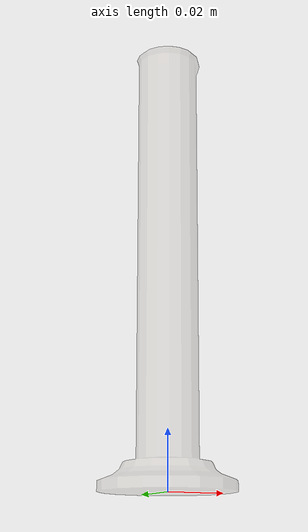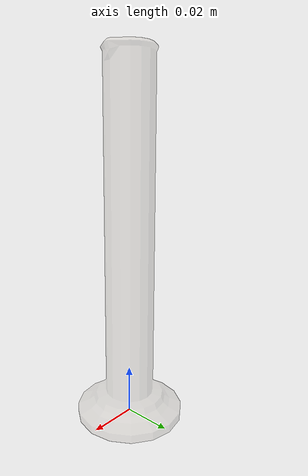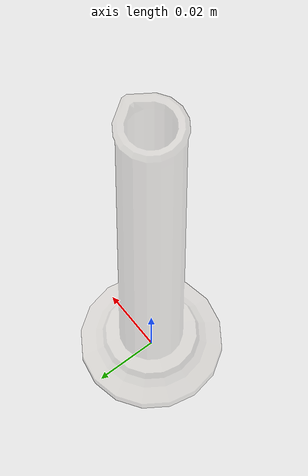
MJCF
<?xml version="1.0" ?>
<!-- @bbox dx=0.046 dy=0.046 dz=0.150 -->
<mujoco model="cylinder_small">
  <asset>
    <texture type="2d" name="lab_cylinder_a" file="lab_cylinder_a.png"/>
    <material name="lab_cylinder_a" texture="lab_cylinder_a" specular="0.4000000000000001" shininess="0.001" rgba="1 1 1 0.3"/>
    <mesh file="cylinder_small.obj" scale="0.013265766386786884 0.013265766386786884 0.013265766386786884"/>
    <mesh file="cylinder_small/cylinder_small_collision_0.obj" scale="0.013265766386786884 0.013265766386786884 0.013265766386786884"/>
    <mesh file="cylinder_small/cylinder_small_collision_1.obj" scale="0.013265766386786884 0.013265766386786884 0.013265766386786884"/>
    <mesh file="cylinder_small/cylinder_small_collision_2.obj" scale="0.013265766386786884 0.013265766386786884 0.013265766386786884"/>
    <mesh file="cylinder_small/cylinder_small_collision_3.obj" scale="0.013265766386786884 0.013265766386786884 0.013265766386786884"/>
    <mesh file="cylinder_small/cylinder_small_collision_4.obj" scale="0.013265766386786884 0.013265766386786884 0.013265766386786884"/>
    <mesh file="cylinder_small/cylinder_small_collision_5.obj" scale="0.013265766386786884 0.013265766386786884 0.013265766386786884"/>
    <mesh file="cylinder_small/cylinder_small_collision_6.obj" scale="0.013265766386786884 0.013265766386786884 0.013265766386786884"/>
    <mesh file="cylinder_small/cylinder_small_collision_7.obj" scale="0.013265766386786884 0.013265766386786884 0.013265766386786884"/>
    <mesh file="cylinder_small/cylinder_small_collision_8.obj" scale="0.013265766386786884 0.013265766386786884 0.013265766386786884"/>
      <material name="CaSO4" rgba="1 1 1 0.7"/>
    <material name="CuCl2" rgba="0.141 1.0 0.174 0.4"/>
    <material name="CuSO4" rgba="0 0.45 1 0.4"/>
    <material name="FeCl3" rgba="0.6475 0.5686 0.023 0.4"/>
    <material name="KMnO4" rgba="0.5 0 0.5 0.4"/>
    <material name="I2" rgba="0.3 0.13 0.0 0.4"/>
    <material name="K2CrO4" rgba="0.57 0.12 0.013 0.4"/>
    <material name="NaCl" rgba="1 1 1 0.3"/>
</asset>
  <worldbody>
    <body name="cylinder_small">
      <inertial pos="0 0 0.075000" mass="0.02" diaginertia="0.0008 0.0008 0.0005"/>
      <geom material="lab_cylinder_a" mesh="cylinder_small" class="visual"/>
      <geom mesh="cylinder_small_collision_0"  class="collision"/>
      <geom mesh="cylinder_small_collision_1"  class="collision"/>
      <geom mesh="cylinder_small_collision_2"  class="collision"/>
      <geom mesh="cylinder_small_collision_3"  class="collision"/>
      <geom mesh="cylinder_small_collision_4"  class="collision"/>
      <geom mesh="cylinder_small_collision_5"  class="collision"/>
      <geom mesh="cylinder_small_collision_6"  class="collision"/>
      <geom mesh="cylinder_small_collision_7"  class="collision"/>
      <geom mesh="cylinder_small_collision_8"  class="collision"/>
      <site class="grasppoint" pos="0.0000 0.0000 0.1200" group="4"/>
          <geom name="solution" type="cylinder" size="0.009038 0.035001" pos="0 0 0.037671" material="CaSO4" class="visual"/>
      <site name="top_site" pos="0 0 0.1500" size="0.01" rgba="1 0 0 0"/>
      <site name="bottom_site" pos="0 0 0.000000" size="0.01" rgba="0 1 0 0"/>
      <site class="placepoint" name="placepoint" pos="0 0 0.1500" group="2"/>
      <!-- bound_sites (group=3): 容器 AABB 8 角，用于 contain() / 安全边界 -->
      <site class="boundpoint" name="bnd_p0"   pos="-0.023 -0.023 0.0"   rgba="0 0 0 0" group="3"/>
      <site class="boundpoint" name="bnd_px"   pos=" 0.023 -0.023 0.0"   rgba="0 0 0 0" group="3"/>
      <site class="boundpoint" name="bnd_py"   pos="-0.023  0.023 0.0"   rgba="0 0 0 0" group="3"/>
      <site class="boundpoint" name="bnd_pxy"  pos=" 0.023  0.023 0.0"   rgba="0 0 0 0" group="3"/>
      <site class="boundpoint" name="bnd_pz"   pos="-0.023 -0.023 0.150" rgba="0 0 0 0" group="3"/>
      <site class="boundpoint" name="bnd_pxz"  pos=" 0.023 -0.023 0.150" rgba="0 0 0 0" group="3"/>
      <site class="boundpoint" name="bnd_pyz"  pos="-0.023  0.023 0.150" rgba="0 0 0 0" group="3"/>
      <site class="boundpoint" name="bnd_pxyz" pos=" 0.023  0.023 0.150" rgba="0 0 0 0" group="3"/>
</body>
  </worldbody>
  <compiler boundmass="0.015" boundinertia="1e-05" angle="radian"/>
  <default>
    <default class="visual">
      <geom group="2" type="mesh" contype="0" conaffinity="0" density="50"/>
    </default>
    <default class="collision">
      <geom group="3" type="mesh" density="50" friction="1 1 0.001" solimp="0.998 0.998 0.001" solref="0.001 2"/>
    </default>
    <default class="grasppoint">
      <site type="sphere" size="0.005" group="4" rgba="0 0 1 1"/>
    </default>
    <default class="boundpoint">
      <site type="sphere" size="0.01" group="3" rgba="1 0 0 1"/>
    </default>
    <default class="placepoint">
      <site type="sphere" size="0.01" group="2" rgba="0 0 1 0"/>
    </default>
  </default>
</mujoco>
